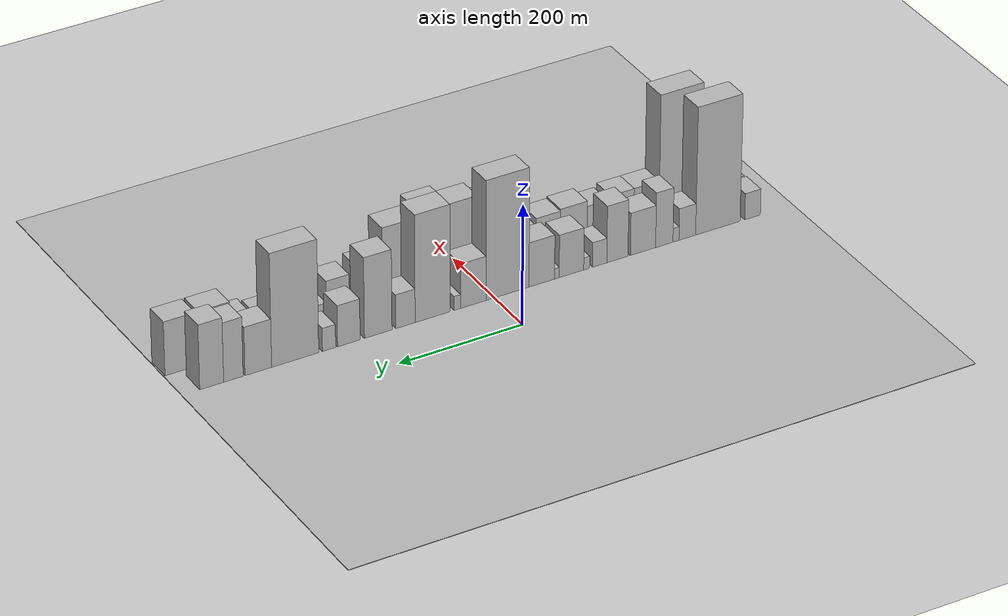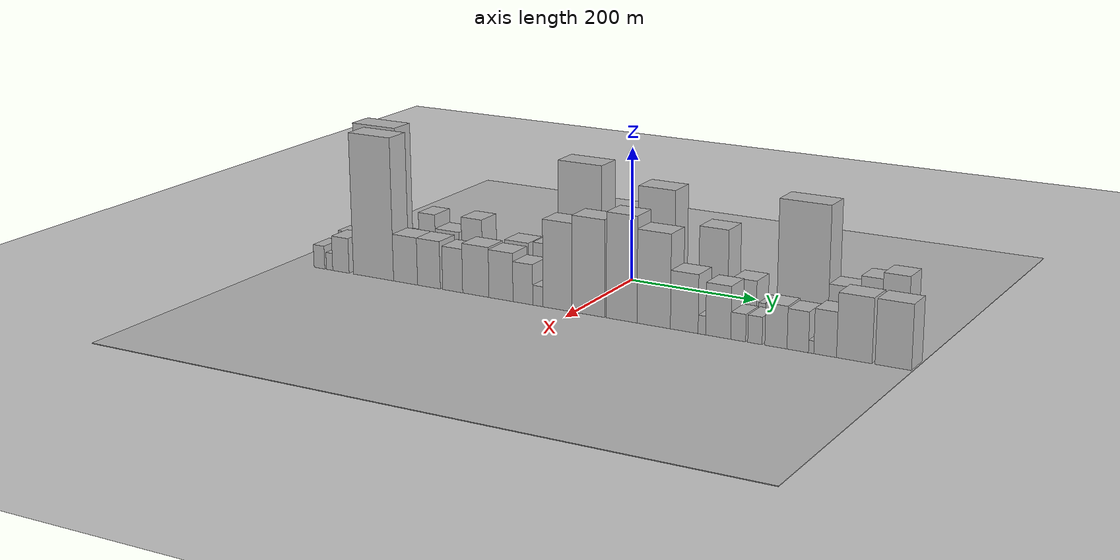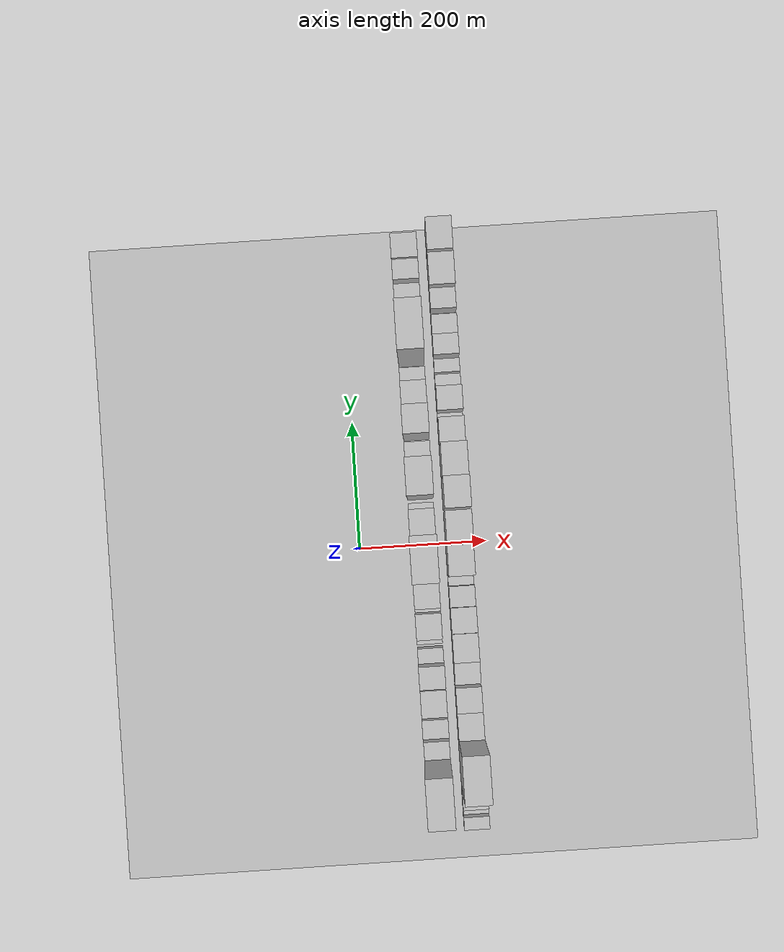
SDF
<sdf version="1.6">
 <world name="default">
  <include><name>ground_plane_1</name><uri>model://HANNAS_ground_plane</uri></include>
  <include>
   <name>ground_plane_2</name>
   <uri>model://HANNAS_ground_plane</uri>
   <pose>100 0 0  0 0 0</pose>
  </include>
  <model name="building_1">
   <static>1</static>
   <pose>100.0000 -430.6978 0 0.000000 0.000000 0.000000</pose>
   <link name="link">
    <pose>0 0 22.50 0 0 0</pose>
    <collision name="collision"><geometry><box><size>40.0000 26.6043 45.0000</size></box></geometry></collision>
    <visual name="visual">
     <cast_shadows>0</cast_shadows>
     <geometry><box><size>40.0000 26.6043 45.0000</size></box></geometry>
     <material>
      <script>
       <uri>model://HANNAS_wall/materials/scripts</uri>
       <uri>model://HANNAS_wall/materials/textures</uri>
       <name>vrc/HANNAS_wall</name>
      </script>
     </material>
    </visual>
   </link>
  </model>
  <model name="building_2">
   <static>1</static>
   <pose>100.0000 -371.7871 0 0.000000 0.000000 0.000000</pose>
   <link name="link">
    <pose>0 0 108.00 0 0 0</pose>
    <collision name="collision"><geometry><box><size>40.0000 75.2170 216.0000</size></box></geometry></collision>
    <visual name="visual">
     <cast_shadows>0</cast_shadows>
     <geometry><box><size>40.0000 75.2170 216.0000</size></box></geometry>
     <material>
      <script>
       <uri>model://HANNAS_wall/materials/scripts</uri>
       <uri>model://HANNAS_wall/materials/textures</uri>
       <name>vrc/HANNAS_wall</name>
      </script>
     </material>
    </visual>
   </link>
  </model>
  <model name="building_3">
   <static>1</static>
   <pose>100.0000 -320.1097 0 0.000000 0.000000 0.000000</pose>
   <link name="link">
    <pose>0 0 27.00 0 0 0</pose>
    <collision name="collision"><geometry><box><size>40.0000 28.1378 54.0000</size></box></geometry></collision>
    <visual name="visual">
     <cast_shadows>0</cast_shadows>
     <geometry><box><size>40.0000 28.1378 54.0000</size></box></geometry>
     <material>
      <script>
       <uri>model://HANNAS_wall/materials/scripts</uri>
       <uri>model://HANNAS_wall/materials/textures</uri>
       <name>vrc/HANNAS_wall</name>
      </script>
     </material>
    </visual>
   </link>
  </model>
  <model name="building_4">
   <static>1</static>
   <pose>100.0000 -300.9719 0 0.000000 0.000000 0.000000</pose>
   <link name="link">
    <pose>0 0 12.00 0 0 0</pose>
    <collision name="collision"><geometry><box><size>40.0000 10.1377 24.0000</size></box></geometry></collision>
    <visual name="visual">
     <cast_shadows>0</cast_shadows>
     <geometry><box><size>40.0000 10.1377 24.0000</size></box></geometry>
     <material>
      <script>
       <uri>model://HANNAS_wall/materials/scripts</uri>
       <uri>model://HANNAS_wall/materials/textures</uri>
       <name>vrc/HANNAS_wall</name>
      </script>
     </material>
    </visual>
   </link>
  </model>
  <model name="building_5">
   <static>1</static>
   <pose>100.0000 -281.3981 0 0.000000 0.000000 0.000000</pose>
   <link name="link">
    <pose>0 0 46.50 0 0 0</pose>
    <collision name="collision"><geometry><box><size>40.0000 29.0098 93.0000</size></box></geometry></collision>
    <visual name="visual">
     <cast_shadows>0</cast_shadows>
     <geometry><box><size>40.0000 29.0098 93.0000</size></box></geometry>
     <material>
      <script>
       <uri>model://HANNAS_wall/materials/scripts</uri>
       <uri>model://HANNAS_wall/materials/textures</uri>
       <name>vrc/HANNAS_wall</name>
      </script>
     </material>
    </visual>
   </link>
  </model>
  <model name="building_6">
   <static>1</static>
   <pose>100.0000 -245.8110 0 0.000000 0.000000 0.000000</pose>
   <link name="link">
    <pose>0 0 36.00 0 0 0</pose>
    <collision name="collision"><geometry><box><size>40.0000 42.1645 72.0000</size></box></geometry></collision>
    <visual name="visual">
     <cast_shadows>0</cast_shadows>
     <geometry><box><size>40.0000 42.1645 72.0000</size></box></geometry>
     <material>
      <script>
       <uri>model://HANNAS_wall/materials/scripts</uri>
       <uri>model://HANNAS_wall/materials/textures</uri>
       <name>vrc/HANNAS_wall</name>
      </script>
     </material>
    </visual>
   </link>
  </model>
  <model name="building_7">
   <static>1</static>
   <pose>100.0000 -203.0343 0 0.000000 0.000000 0.000000</pose>
   <link name="link">
    <pose>0 0 48.00 0 0 0</pose>
    <collision name="collision"><geometry><box><size>40.0000 35.3889 96.0000</size></box></geometry></collision>
    <visual name="visual">
     <cast_shadows>0</cast_shadows>
     <geometry><box><size>40.0000 35.3889 96.0000</size></box></geometry>
     <material>
      <script>
       <uri>model://HANNAS_wall/materials/scripts</uri>
       <uri>model://HANNAS_wall/materials/textures</uri>
       <name>vrc/HANNAS_wall</name>
      </script>
     </material>
    </visual>
   </link>
  </model>
  <model name="building_8">
   <static>1</static>
   <pose>100.0000 -173.5133 0 0.000000 0.000000 0.000000</pose>
   <link name="link">
    <pose>0 0 21.00 0 0 0</pose>
    <collision name="collision"><geometry><box><size>40.0000 23.6531 42.0000</size></box></geometry></collision>
    <visual name="visual">
     <cast_shadows>0</cast_shadows>
     <geometry><box><size>40.0000 23.6531 42.0000</size></box></geometry>
     <material>
      <script>
       <uri>model://HANNAS_wall/materials/scripts</uri>
       <uri>model://HANNAS_wall/materials/textures</uri>
       <name>vrc/HANNAS_wall</name>
      </script>
     </material>
    </visual>
   </link>
  </model>
  <model name="building_9">
   <static>1</static>
   <pose>100.0000 -151.7651 0 0.000000 0.000000 0.000000</pose>
   <link name="link">
    <pose>0 0 10.50 0 0 0</pose>
    <collision name="collision"><geometry><box><size>40.0000 9.8432 21.0000</size></box></geometry></collision>
    <visual name="visual">
     <cast_shadows>0</cast_shadows>
     <geometry><box><size>40.0000 9.8432 21.0000</size></box></geometry>
     <material>
      <script>
       <uri>model://HANNAS_wall/materials/scripts</uri>
       <uri>model://HANNAS_wall/materials/textures</uri>
       <name>vrc/HANNAS_wall</name>
      </script>
     </material>
    </visual>
   </link>
  </model>
  <model name="building_10">
   <static>1</static>
   <pose>100.0000 -126.5953 0 0.000000 0.000000 0.000000</pose>
   <link name="link">
    <pose>0 0 36.00 0 0 0</pose>
    <collision name="collision"><geometry><box><size>40.0000 40.4965 72.0000</size></box></geometry></collision>
    <visual name="visual">
     <cast_shadows>0</cast_shadows>
     <geometry><box><size>40.0000 40.4965 72.0000</size></box></geometry>
     <material>
      <script>
       <uri>model://HANNAS_wall/materials/scripts</uri>
       <uri>model://HANNAS_wall/materials/textures</uri>
       <name>vrc/HANNAS_wall</name>
      </script>
     </material>
    </visual>
   </link>
  </model>
  <model name="building_11">
   <static>1</static>
   <pose>100.0000 -102.5410 0 0.000000 0.000000 0.000000</pose>
   <link name="link">
    <pose>0 0 9.00 0 0 0</pose>
    <collision name="collision"><geometry><box><size>40.0000 7.6121 18.0000</size></box></geometry></collision>
    <visual name="visual">
     <cast_shadows>0</cast_shadows>
     <geometry><box><size>40.0000 7.6121 18.0000</size></box></geometry>
     <material>
      <script>
       <uri>model://HANNAS_wall/materials/scripts</uri>
       <uri>model://HANNAS_wall/materials/textures</uri>
       <name>vrc/HANNAS_wall</name>
      </script>
     </material>
    </visual>
   </link>
  </model>
  <model name="building_12">
   <static>1</static>
   <pose>100.0000 -77.6486 0 0.000000 0.000000 0.000000</pose>
   <link name="link">
    <pose>0 0 37.50 0 0 0</pose>
    <collision name="collision"><geometry><box><size>40.0000 42.1728 75.0000</size></box></geometry></collision>
    <visual name="visual">
     <cast_shadows>0</cast_shadows>
     <geometry><box><size>40.0000 42.1728 75.0000</size></box></geometry>
     <material>
      <script>
       <uri>model://HANNAS_wall/materials/scripts</uri>
       <uri>model://HANNAS_wall/materials/textures</uri>
       <name>vrc/HANNAS_wall</name>
      </script>
     </material>
    </visual>
   </link>
  </model>
  <model name="building_13">
   <static>1</static>
   <pose>100.0000 -21.2576 0 0.000000 0.000000 0.000000</pose>
   <link name="link">
    <pose>0 0 100.50 0 0 0</pose>
    <collision name="collision"><geometry><box><size>40.0000 70.6093 201.0000</size></box></geometry></collision>
    <visual name="visual">
     <cast_shadows>0</cast_shadows>
     <geometry><box><size>40.0000 70.6093 201.0000</size></box></geometry>
     <material>
      <script>
       <uri>model://HANNAS_wall/materials/scripts</uri>
       <uri>model://HANNAS_wall/materials/textures</uri>
       <name>vrc/HANNAS_wall</name>
      </script>
     </material>
    </visual>
   </link>
  </model>
  <model name="building_14">
   <static>1</static>
   <pose>100.0000 34.8012 0 0.000000 0.000000 0.000000</pose>
   <link name="link">
    <pose>0 0 37.50 0 0 0</pose>
    <collision name="collision"><geometry><box><size>40.0000 41.5082 75.0000</size></box></geometry></collision>
    <visual name="visual">
     <cast_shadows>0</cast_shadows>
     <geometry><box><size>40.0000 41.5082 75.0000</size></box></geometry>
     <material>
      <script>
       <uri>model://HANNAS_wall/materials/scripts</uri>
       <uri>model://HANNAS_wall/materials/textures</uri>
       <name>vrc/HANNAS_wall</name>
      </script>
     </material>
    </visual>
   </link>
  </model>
  <model name="building_15">
   <static>1</static>
   <pose>100.0000 60.9129 0 0.000000 0.000000 0.000000</pose>
   <link name="link">
    <pose>0 0 12.00 0 0 0</pose>
    <collision name="collision"><geometry><box><size>40.0000 10.7152 24.0000</size></box></geometry></collision>
    <visual name="visual">
     <cast_shadows>0</cast_shadows>
     <geometry><box><size>40.0000 10.7152 24.0000</size></box></geometry>
     <material>
      <script>
       <uri>model://HANNAS_wall/materials/scripts</uri>
       <uri>model://HANNAS_wall/materials/textures</uri>
       <name>vrc/HANNAS_wall</name>
      </script>
     </material>
    </visual>
   </link>
  </model>
  <model name="building_16">
   <static>1</static>
   <pose>100.0000 100.7594 0 0.000000 0.000000 0.000000</pose>
   <link name="link">
    <pose>0 0 90.00 0 0 0</pose>
    <collision name="collision"><geometry><box><size>40.0000 56.9779 180.0000</size></box></geometry></collision>
    <visual name="visual">
     <cast_shadows>0</cast_shadows>
     <geometry><box><size>40.0000 56.9779 180.0000</size></box></geometry>
     <material>
      <script>
       <uri>model://HANNAS_wall/materials/scripts</uri>
       <uri>model://HANNAS_wall/materials/textures</uri>
       <name>vrc/HANNAS_wall</name>
      </script>
     </material>
    </visual>
   </link>
  </model>
  <model name="building_17">
   <static>1</static>
   <pose>100.0000 144.9115 0 0.000000 0.000000 0.000000</pose>
   <link name="link">
    <pose>0 0 28.50 0 0 0</pose>
    <collision name="collision"><geometry><box><size>40.0000 31.3262 57.0000</size></box></geometry></collision>
    <visual name="visual">
     <cast_shadows>0</cast_shadows>
     <geometry><box><size>40.0000 31.3262 57.0000</size></box></geometry>
     <material>
      <script>
       <uri>model://HANNAS_wall/materials/scripts</uri>
       <uri>model://HANNAS_wall/materials/textures</uri>
       <name>vrc/HANNAS_wall</name>
      </script>
     </material>
    </visual>
   </link>
  </model>
  <model name="building_18">
   <static>1</static>
   <pose>100.0000 188.7496 0 0.000000 0.000000 0.000000</pose>
   <link name="link">
    <pose>0 0 67.50 0 0 0</pose>
    <collision name="collision"><geometry><box><size>40.0000 44.3502 135.0000</size></box></geometry></collision>
    <visual name="visual">
     <cast_shadows>0</cast_shadows>
     <geometry><box><size>40.0000 44.3502 135.0000</size></box></geometry>
     <material>
      <script>
       <uri>model://HANNAS_wall/materials/scripts</uri>
       <uri>model://HANNAS_wall/materials/textures</uri>
       <name>vrc/HANNAS_wall</name>
      </script>
     </material>
    </visual>
   </link>
  </model>
  <model name="building_19">
   <static>1</static>
   <pose>100.0000 235.9667 0 0.000000 0.000000 0.000000</pose>
   <link name="link">
    <pose>0 0 34.50 0 0 0</pose>
    <collision name="collision"><geometry><box><size>40.0000 36.0839 69.0000</size></box></geometry></collision>
    <visual name="visual">
     <cast_shadows>0</cast_shadows>
     <geometry><box><size>40.0000 36.0839 69.0000</size></box></geometry>
     <material>
      <script>
       <uri>model://HANNAS_wall/materials/scripts</uri>
       <uri>model://HANNAS_wall/materials/textures</uri>
       <name>vrc/HANNAS_wall</name>
      </script>
     </material>
    </visual>
   </link>
  </model>
  <model name="building_20">
   <static>1</static>
   <pose>100.0000 267.5743 0 0.000000 0.000000 0.000000</pose>
   <link name="link">
    <pose>0 0 19.50 0 0 0</pose>
    <collision name="collision"><geometry><box><size>40.0000 21.1314 39.0000</size></box></geometry></collision>
    <visual name="visual">
     <cast_shadows>0</cast_shadows>
     <geometry><box><size>40.0000 21.1314 39.0000</size></box></geometry>
     <material>
      <script>
       <uri>model://HANNAS_wall/materials/scripts</uri>
       <uri>model://HANNAS_wall/materials/textures</uri>
       <name>vrc/HANNAS_wall</name>
      </script>
     </material>
    </visual>
   </link>
  </model>
  <model name="building_21">
   <static>1</static>
   <pose>100.0000 321.5245 0 0.000000 0.000000 0.000000</pose>
   <link name="link">
    <pose>0 0 94.50 0 0 0</pose>
    <collision name="collision"><geometry><box><size>40.0000 74.7689 189.0000</size></box></geometry></collision>
    <visual name="visual">
     <cast_shadows>0</cast_shadows>
     <geometry><box><size>40.0000 74.7689 189.0000</size></box></geometry>
     <material>
      <script>
       <uri>model://HANNAS_wall/materials/scripts</uri>
       <uri>model://HANNAS_wall/materials/textures</uri>
       <name>vrc/HANNAS_wall</name>
      </script>
     </material>
    </visual>
   </link>
  </model>
  <model name="building_22">
   <static>1</static>
   <pose>100.0000 379.8800 0 0.000000 0.000000 0.000000</pose>
   <link name="link">
    <pose>0 0 40.50 0 0 0</pose>
    <collision name="collision"><geometry><box><size>40.0000 41.9421 81.0000</size></box></geometry></collision>
    <visual name="visual">
     <cast_shadows>0</cast_shadows>
     <geometry><box><size>40.0000 41.9421 81.0000</size></box></geometry>
     <material>
      <script>
       <uri>model://HANNAS_wall/materials/scripts</uri>
       <uri>model://HANNAS_wall/materials/textures</uri>
       <name>vrc/HANNAS_wall</name>
      </script>
     </material>
    </visual>
   </link>
  </model>
  <model name="building_23">
   <static>1</static>
   <pose>100.0000 419.2164 0 0.000000 0.000000 0.000000</pose>
   <link name="link">
    <pose>0 0 49.50 0 0 0</pose>
    <collision name="collision"><geometry><box><size>40.0000 30.7308 99.0000</size></box></geometry></collision>
    <visual name="visual">
     <cast_shadows>0</cast_shadows>
     <geometry><box><size>40.0000 30.7308 99.0000</size></box></geometry>
     <material>
      <script>
       <uri>model://HANNAS_wall/materials/scripts</uri>
       <uri>model://HANNAS_wall/materials/textures</uri>
       <name>vrc/HANNAS_wall</name>
      </script>
     </material>
    </visual>
   </link>
  </model>
  <model name="building_24">
   <static>1</static>
   <pose>100.0000 453.3431 0 0.000000 0.000000 0.000000</pose>
   <link name="link">
    <pose>0 0 54.00 0 0 0</pose>
    <collision name="collision"><geometry><box><size>40.0000 37.5226 108.0000</size></box></geometry></collision>
    <visual name="visual">
     <cast_shadows>0</cast_shadows>
     <geometry><box><size>40.0000 37.5226 108.0000</size></box></geometry>
     <material>
      <script>
       <uri>model://HANNAS_wall/materials/scripts</uri>
       <uri>model://HANNAS_wall/materials/textures</uri>
       <name>vrc/HANNAS_wall</name>
      </script>
     </material>
    </visual>
   </link>
  </model>
  <model name="building_25">
   <static>1</static>
   <pose>155.0000 -440.0898 0 0.000000 0.000000 0.000000</pose>
   <link name="link">
    <pose>0 0 18.00 0 0 0</pose>
    <collision name="collision"><geometry><box><size>40.0000 19.8204 36.0000</size></box></geometry></collision>
    <visual name="visual">
     <cast_shadows>0</cast_shadows>
     <geometry><box><size>40.0000 19.8204 36.0000</size></box></geometry>
     <material>
      <script>
       <uri>model://HANNAS_wall/materials/scripts</uri>
       <uri>model://HANNAS_wall/materials/textures</uri>
       <name>vrc/HANNAS_wall</name>
      </script>
     </material>
    </visual>
   </link>
  </model>
  <model name="building_26">
   <static>1</static>
   <pose>155.0000 -421.3880 0 0.000000 0.000000 0.000000</pose>
   <link name="link">
    <pose>0 0 13.50 0 0 0</pose>
    <collision name="collision"><geometry><box><size>40.0000 11.5831 27.0000</size></box></geometry></collision>
    <visual name="visual">
     <cast_shadows>0</cast_shadows>
     <geometry><box><size>40.0000 11.5831 27.0000</size></box></geometry>
     <material>
      <script>
       <uri>model://HANNAS_wall/materials/scripts</uri>
       <uri>model://HANNAS_wall/materials/textures</uri>
       <name>vrc/HANNAS_wall</name>
      </script>
     </material>
    </visual>
   </link>
  </model>
  <model name="building_27">
   <static>1</static>
   <pose>155.0000 -400.5384 0 0.000000 0.000000 0.000000</pose>
   <link name="link">
    <pose>0 0 27.00 0 0 0</pose>
    <collision name="collision"><geometry><box><size>40.0000 30.1163 54.0000</size></box></geometry></collision>
    <visual name="visual">
     <cast_shadows>0</cast_shadows>
     <geometry><box><size>40.0000 30.1163 54.0000</size></box></geometry>
     <material>
      <script>
       <uri>model://HANNAS_wall/materials/scripts</uri>
       <uri>model://HANNAS_wall/materials/textures</uri>
       <name>vrc/HANNAS_wall</name>
      </script>
     </material>
    </visual>
   </link>
  </model>
  <model name="building_28">
   <static>1</static>
   <pose>155.0000 -341.4402 0 0.000000 0.000000 0.000000</pose>
   <link name="link">
    <pose>0 0 108.00 0 0 0</pose>
    <collision name="collision"><geometry><box><size>40.0000 72.0801 216.0000</size></box></geometry></collision>
    <visual name="visual">
     <cast_shadows>0</cast_shadows>
     <geometry><box><size>40.0000 72.0801 216.0000</size></box></geometry>
     <material>
      <script>
       <uri>model://HANNAS_wall/materials/scripts</uri>
       <uri>model://HANNAS_wall/materials/textures</uri>
       <name>vrc/HANNAS_wall</name>
      </script>
     </material>
    </visual>
   </link>
  </model>
  <model name="building_29">
   <static>1</static>
   <pose>155.0000 -284.2451 0 0.000000 0.000000 0.000000</pose>
   <link name="link">
    <pose>0 0 36.00 0 0 0</pose>
    <collision name="collision"><geometry><box><size>40.0000 42.3101 72.0000</size></box></geometry></collision>
    <visual name="visual">
     <cast_shadows>0</cast_shadows>
     <geometry><box><size>40.0000 42.3101 72.0000</size></box></geometry>
     <material>
      <script>
       <uri>model://HANNAS_wall/materials/scripts</uri>
       <uri>model://HANNAS_wall/materials/textures</uri>
       <name>vrc/HANNAS_wall</name>
      </script>
     </material>
    </visual>
   </link>
  </model>
  <model name="building_30">
   <static>1</static>
   <pose>155.0000 -243.2592 0 0.000000 0.000000 0.000000</pose>
   <link name="link">
    <pose>0 0 36.00 0 0 0</pose>
    <collision name="collision"><geometry><box><size>40.0000 39.6618 72.0000</size></box></geometry></collision>
    <visual name="visual">
     <cast_shadows>0</cast_shadows>
     <geometry><box><size>40.0000 39.6618 72.0000</size></box></geometry>
     <material>
      <script>
       <uri>model://HANNAS_wall/materials/scripts</uri>
       <uri>model://HANNAS_wall/materials/textures</uri>
       <name>vrc/HANNAS_wall</name>
      </script>
     </material>
    </visual>
   </link>
  </model>
  <model name="building_31">
   <static>1</static>
   <pose>155.0000 -202.1910 0 0.000000 0.000000 0.000000</pose>
   <link name="link">
    <pose>0 0 33.00 0 0 0</pose>
    <collision name="collision"><geometry><box><size>40.0000 34.4747 66.0000</size></box></geometry></collision>
    <visual name="visual">
     <cast_shadows>0</cast_shadows>
     <geometry><box><size>40.0000 34.4747 66.0000</size></box></geometry>
     <material>
      <script>
       <uri>model://HANNAS_wall/materials/scripts</uri>
       <uri>model://HANNAS_wall/materials/textures</uri>
       <name>vrc/HANNAS_wall</name>
      </script>
     </material>
    </visual>
   </link>
  </model>
  <model name="building_32">
   <static>1</static>
   <pose>155.0000 -162.6320 0 0.000000 0.000000 0.000000</pose>
   <link name="link">
    <pose>0 0 37.50 0 0 0</pose>
    <collision name="collision"><geometry><box><size>40.0000 44.6434 75.0000</size></box></geometry></collision>
    <visual name="visual">
     <cast_shadows>0</cast_shadows>
     <geometry><box><size>40.0000 44.6434 75.0000</size></box></geometry>
     <material>
      <script>
       <uri>model://HANNAS_wall/materials/scripts</uri>
       <uri>model://HANNAS_wall/materials/textures</uri>
       <name>vrc/HANNAS_wall</name>
      </script>
     </material>
    </visual>
   </link>
  </model>
  <model name="building_33">
   <static>1</static>
   <pose>155.0000 -120.1505 0 0.000000 0.000000 0.000000</pose>
   <link name="link">
    <pose>0 0 36.00 0 0 0</pose>
    <collision name="collision"><geometry><box><size>40.0000 40.3195 72.0000</size></box></geometry></collision>
    <visual name="visual">
     <cast_shadows>0</cast_shadows>
     <geometry><box><size>40.0000 40.3195 72.0000</size></box></geometry>
     <material>
      <script>
       <uri>model://HANNAS_wall/materials/scripts</uri>
       <uri>model://HANNAS_wall/materials/textures</uri>
       <name>vrc/HANNAS_wall</name>
      </script>
     </material>
    </visual>
   </link>
  </model>
  <model name="building_34">
   <static>1</static>
   <pose>155.0000 -83.6315 0 0.000000 0.000000 0.000000</pose>
   <link name="link">
    <pose>0 0 30.00 0 0 0</pose>
    <collision name="collision"><geometry><box><size>40.0000 32.7185 60.0000</size></box></geometry></collision>
    <visual name="visual">
     <cast_shadows>0</cast_shadows>
     <geometry><box><size>40.0000 32.7185 60.0000</size></box></geometry>
     <material>
      <script>
       <uri>model://HANNAS_wall/materials/scripts</uri>
       <uri>model://HANNAS_wall/materials/textures</uri>
       <name>vrc/HANNAS_wall</name>
      </script>
     </material>
    </visual>
   </link>
  </model>
  <model name="building_35">
   <static>1</static>
   <pose>155.0000 -58.7994 0 0.000000 0.000000 0.000000</pose>
   <link name="link">
    <pose>0 0 15.00 0 0 0</pose>
    <collision name="collision"><geometry><box><size>40.0000 16.9456 30.0000</size></box></geometry></collision>
    <visual name="visual">
     <cast_shadows>0</cast_shadows>
     <geometry><box><size>40.0000 16.9456 30.0000</size></box></geometry>
     <material>
      <script>
       <uri>model://HANNAS_wall/materials/scripts</uri>
       <uri>model://HANNAS_wall/materials/textures</uri>
       <name>vrc/HANNAS_wall</name>
      </script>
     </material>
    </visual>
   </link>
  </model>
  <model name="building_36">
   <static>1</static>
   <pose>155.0000 -26.7940 0 0.000000 0.000000 0.000000</pose>
   <link name="link">
    <pose>0 0 64.50 0 0 0</pose>
    <collision name="collision"><geometry><box><size>40.0000 47.0651 129.0000</size></box></geometry></collision>
    <visual name="visual">
     <cast_shadows>0</cast_shadows>
     <geometry><box><size>40.0000 47.0651 129.0000</size></box></geometry>
     <material>
      <script>
       <uri>model://HANNAS_wall/materials/scripts</uri>
       <uri>model://HANNAS_wall/materials/textures</uri>
       <name>vrc/HANNAS_wall</name>
      </script>
     </material>
    </visual>
   </link>
  </model>
  <model name="building_37">
   <static>1</static>
   <pose>155.0000 22.6540 0 0.000000 0.000000 0.000000</pose>
   <link name="link">
    <pose>0 0 70.50 0 0 0</pose>
    <collision name="collision"><geometry><box><size>40.0000 51.8309 141.0000</size></box></geometry></collision>
    <visual name="visual">
     <cast_shadows>0</cast_shadows>
     <geometry><box><size>40.0000 51.8309 141.0000</size></box></geometry>
     <material>
      <script>
       <uri>model://HANNAS_wall/materials/scripts</uri>
       <uri>model://HANNAS_wall/materials/textures</uri>
       <name>vrc/HANNAS_wall</name>
      </script>
     </material>
    </visual>
   </link>
  </model>
  <model name="building_38">
   <static>1</static>
   <pose>155.0000 75.6339 0 0.000000 0.000000 0.000000</pose>
   <link name="link">
    <pose>0 0 76.50 0 0 0</pose>
    <collision name="collision"><geometry><box><size>40.0000 48.1289 153.0000</size></box></geometry></collision>
    <visual name="visual">
     <cast_shadows>0</cast_shadows>
     <geometry><box><size>40.0000 48.1289 153.0000</size></box></geometry>
     <material>
      <script>
       <uri>model://HANNAS_wall/materials/scripts</uri>
       <uri>model://HANNAS_wall/materials/textures</uri>
       <name>vrc/HANNAS_wall</name>
      </script>
     </material>
    </visual>
   </link>
  </model>
  <model name="building_39">
   <static>1</static>
   <pose>155.0000 125.3861 0 0.000000 0.000000 0.000000</pose>
   <link name="link">
    <pose>0 0 67.50 0 0 0</pose>
    <collision name="collision"><geometry><box><size>40.0000 51.3756 135.0000</size></box></geometry></collision>
    <visual name="visual">
     <cast_shadows>0</cast_shadows>
     <geometry><box><size>40.0000 51.3756 135.0000</size></box></geometry>
     <material>
      <script>
       <uri>model://HANNAS_wall/materials/scripts</uri>
       <uri>model://HANNAS_wall/materials/textures</uri>
       <name>vrc/HANNAS_wall</name>
      </script>
     </material>
    </visual>
   </link>
  </model>
  <model name="building_40">
   <static>1</static>
   <pose>155.0000 172.0898 0 0.000000 0.000000 0.000000</pose>
   <link name="link">
    <pose>0 0 42.00 0 0 0</pose>
    <collision name="collision"><geometry><box><size>40.0000 42.0317 84.0000</size></box></geometry></collision>
    <visual name="visual">
     <cast_shadows>0</cast_shadows>
     <geometry><box><size>40.0000 42.0317 84.0000</size></box></geometry>
     <material>
      <script>
       <uri>model://HANNAS_wall/materials/scripts</uri>
       <uri>model://HANNAS_wall/materials/textures</uri>
       <name>vrc/HANNAS_wall</name>
      </script>
     </material>
    </visual>
   </link>
  </model>
  <model name="building_41">
   <static>1</static>
   <pose>155.0000 198.7292 0 0.000000 0.000000 0.000000</pose>
   <link name="link">
    <pose>0 0 13.50 0 0 0</pose>
    <collision name="collision"><geometry><box><size>40.0000 11.2472 27.0000</size></box></geometry></collision>
    <visual name="visual">
     <cast_shadows>0</cast_shadows>
     <geometry><box><size>40.0000 11.2472 27.0000</size></box></geometry>
     <material>
      <script>
       <uri>model://HANNAS_wall/materials/scripts</uri>
       <uri>model://HANNAS_wall/materials/textures</uri>
       <name>vrc/HANNAS_wall</name>
      </script>
     </material>
    </visual>
   </link>
  </model>
  <model name="building_42">
   <static>1</static>
   <pose>155.0000 223.1181 0 0.000000 0.000000 0.000000</pose>
   <link name="link">
    <pose>0 0 37.50 0 0 0</pose>
    <collision name="collision"><geometry><box><size>40.0000 37.5305 75.0000</size></box></geometry></collision>
    <visual name="visual">
     <cast_shadows>0</cast_shadows>
     <geometry><box><size>40.0000 37.5305 75.0000</size></box></geometry>
     <material>
      <script>
       <uri>model://HANNAS_wall/materials/scripts</uri>
       <uri>model://HANNAS_wall/materials/textures</uri>
       <name>vrc/HANNAS_wall</name>
      </script>
     </material>
    </visual>
   </link>
  </model>
  <model name="building_43">
   <static>1</static>
   <pose>155.0000 252.9131 0 0.000000 0.000000 0.000000</pose>
   <link name="link">
    <pose>0 0 19.50 0 0 0</pose>
    <collision name="collision"><geometry><box><size>40.0000 22.0596 39.0000</size></box></geometry></collision>
    <visual name="visual">
     <cast_shadows>0</cast_shadows>
     <geometry><box><size>40.0000 22.0596 39.0000</size></box></geometry>
     <material>
      <script>
       <uri>model://HANNAS_wall/materials/scripts</uri>
       <uri>model://HANNAS_wall/materials/textures</uri>
       <name>vrc/HANNAS_wall</name>
      </script>
     </material>
    </visual>
   </link>
  </model>
  <model name="building_44">
   <static>1</static>
   <pose>155.0000 277.4727 0 0.000000 0.000000 0.000000</pose>
   <link name="link">
    <pose>0 0 19.50 0 0 0</pose>
    <collision name="collision"><geometry><box><size>40.0000 21.0597 39.0000</size></box></geometry></collision>
    <visual name="visual">
     <cast_shadows>0</cast_shadows>
     <geometry><box><size>40.0000 21.0597 39.0000</size></box></geometry>
     <material>
      <script>
       <uri>model://HANNAS_wall/materials/scripts</uri>
       <uri>model://HANNAS_wall/materials/textures</uri>
       <name>vrc/HANNAS_wall</name>
      </script>
     </material>
    </visual>
   </link>
  </model>
  <model name="building_45">
   <static>1</static>
   <pose>155.0000 308.0453 0 0.000000 0.000000 0.000000</pose>
   <link name="link">
    <pose>0 0 30.00 0 0 0</pose>
    <collision name="collision"><geometry><box><size>40.0000 32.0854 60.0000</size></box></geometry></collision>
    <visual name="visual">
     <cast_shadows>0</cast_shadows>
     <geometry><box><size>40.0000 32.0854 60.0000</size></box></geometry>
     <material>
      <script>
       <uri>model://HANNAS_wall/materials/scripts</uri>
       <uri>model://HANNAS_wall/materials/textures</uri>
       <name>vrc/HANNAS_wall</name>
      </script>
     </material>
    </visual>
   </link>
  </model>
  <model name="building_46">
   <static>1</static>
   <pose>155.0000 339.4698 0 0.000000 0.000000 0.000000</pose>
   <link name="link">
    <pose>0 0 28.50 0 0 0</pose>
    <collision name="collision"><geometry><box><size>40.0000 30.7636 57.0000</size></box></geometry></collision>
    <visual name="visual">
     <cast_shadows>0</cast_shadows>
     <geometry><box><size>40.0000 30.7636 57.0000</size></box></geometry>
     <material>
      <script>
       <uri>model://HANNAS_wall/materials/scripts</uri>
       <uri>model://HANNAS_wall/materials/textures</uri>
       <name>vrc/HANNAS_wall</name>
      </script>
     </material>
    </visual>
   </link>
  </model>
  <model name="building_47">
   <static>1</static>
   <pose>155.0000 358.6205 0 0.000000 0.000000 0.000000</pose>
   <link name="link">
    <pose>0 0 9.00 0 0 0</pose>
    <collision name="collision"><geometry><box><size>40.0000 7.5377 18.0000</size></box></geometry></collision>
    <visual name="visual">
     <cast_shadows>0</cast_shadows>
     <geometry><box><size>40.0000 7.5377 18.0000</size></box></geometry>
     <material>
      <script>
       <uri>model://HANNAS_wall/materials/scripts</uri>
       <uri>model://HANNAS_wall/materials/textures</uri>
       <name>vrc/HANNAS_wall</name>
      </script>
     </material>
    </visual>
   </link>
  </model>
  <model name="building_48">
   <static>1</static>
   <pose>155.0000 378.4466 0 0.000000 0.000000 0.000000</pose>
   <link name="link">
    <pose>0 0 31.50 0 0 0</pose>
    <collision name="collision"><geometry><box><size>40.0000 32.1146 63.0000</size></box></geometry></collision>
    <visual name="visual">
     <cast_shadows>0</cast_shadows>
     <geometry><box><size>40.0000 32.1146 63.0000</size></box></geometry>
     <material>
      <script>
       <uri>model://HANNAS_wall/materials/scripts</uri>
       <uri>model://HANNAS_wall/materials/textures</uri>
       <name>vrc/HANNAS_wall</name>
      </script>
     </material>
    </visual>
   </link>
  </model>
  <model name="building_49">
   <static>1</static>
   <pose>155.0000 419.2833 0 0.000000 0.000000 0.000000</pose>
   <link name="link">
    <pose>0 0 45.00 0 0 0</pose>
    <collision name="collision"><geometry><box><size>40.0000 49.5587 90.0000</size></box></geometry></collision>
    <visual name="visual">
     <cast_shadows>0</cast_shadows>
     <geometry><box><size>40.0000 49.5587 90.0000</size></box></geometry>
     <material>
      <script>
       <uri>model://HANNAS_wall/materials/scripts</uri>
       <uri>model://HANNAS_wall/materials/textures</uri>
       <name>vrc/HANNAS_wall</name>
      </script>
     </material>
    </visual>
   </link>
  </model>
  <model name="building_50">
   <static>1</static>
   <pose>155.0000 473.0085 0 0.000000 0.000000 0.000000</pose>
   <link name="link">
    <pose>0 0 45.00 0 0 0</pose>
    <collision name="collision"><geometry><box><size>40.0000 49.8918 90.0000</size></box></geometry></collision>
    <visual name="visual">
     <cast_shadows>0</cast_shadows>
     <geometry><box><size>40.0000 49.8918 90.0000</size></box></geometry>
     <material>
      <script>
       <uri>model://HANNAS_wall/materials/scripts</uri>
       <uri>model://HANNAS_wall/materials/textures</uri>
       <name>vrc/HANNAS_wall</name>
      </script>
     </material>
    </visual>
   </link>
  </model>
 </world>
</sdf>
